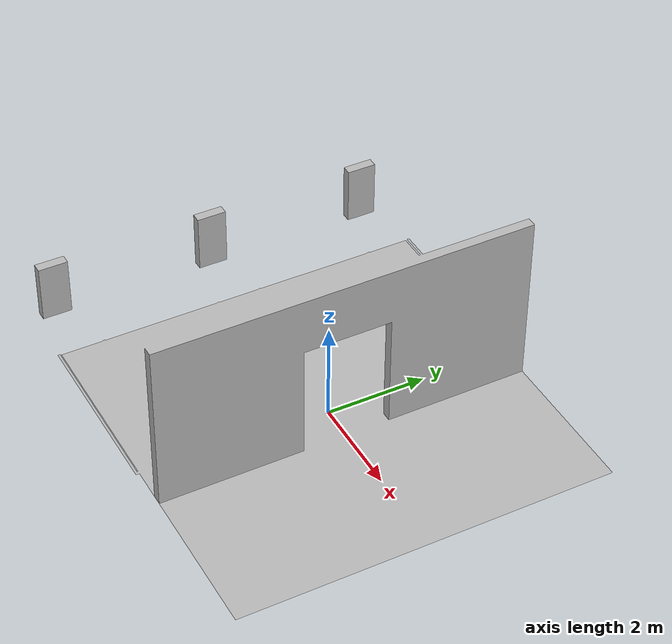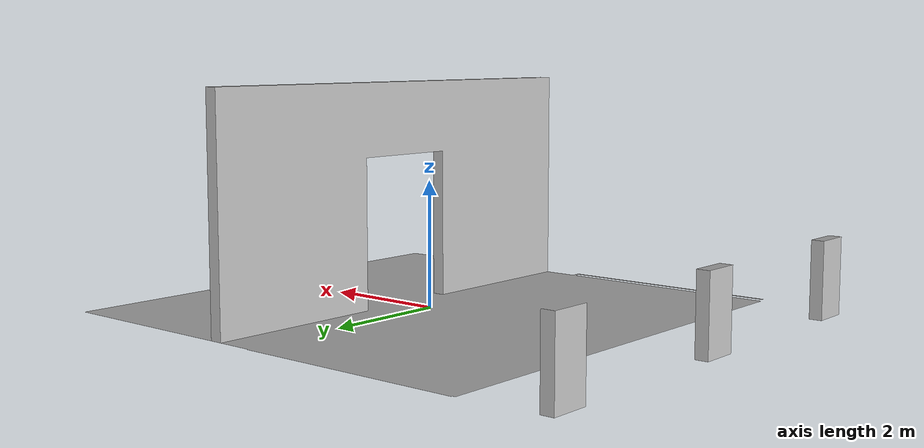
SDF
<?xml version="1.0" ?>
<sdf version="1.7">
  <model name="Wall_with_markers_big_board_onepattern_error">
    <static>true</static>
    <pose>0 0 0 0 0 0</pose>
    <link name="link">
    <visual name="visual">
      <geometry>
        <mesh>
          <uri>model://wall_with_markers_big_board_onepattern_error/meshes/model.dae</uri>
        </mesh>
      </geometry>
    </visual>
  </link>
</model>
</sdf>
